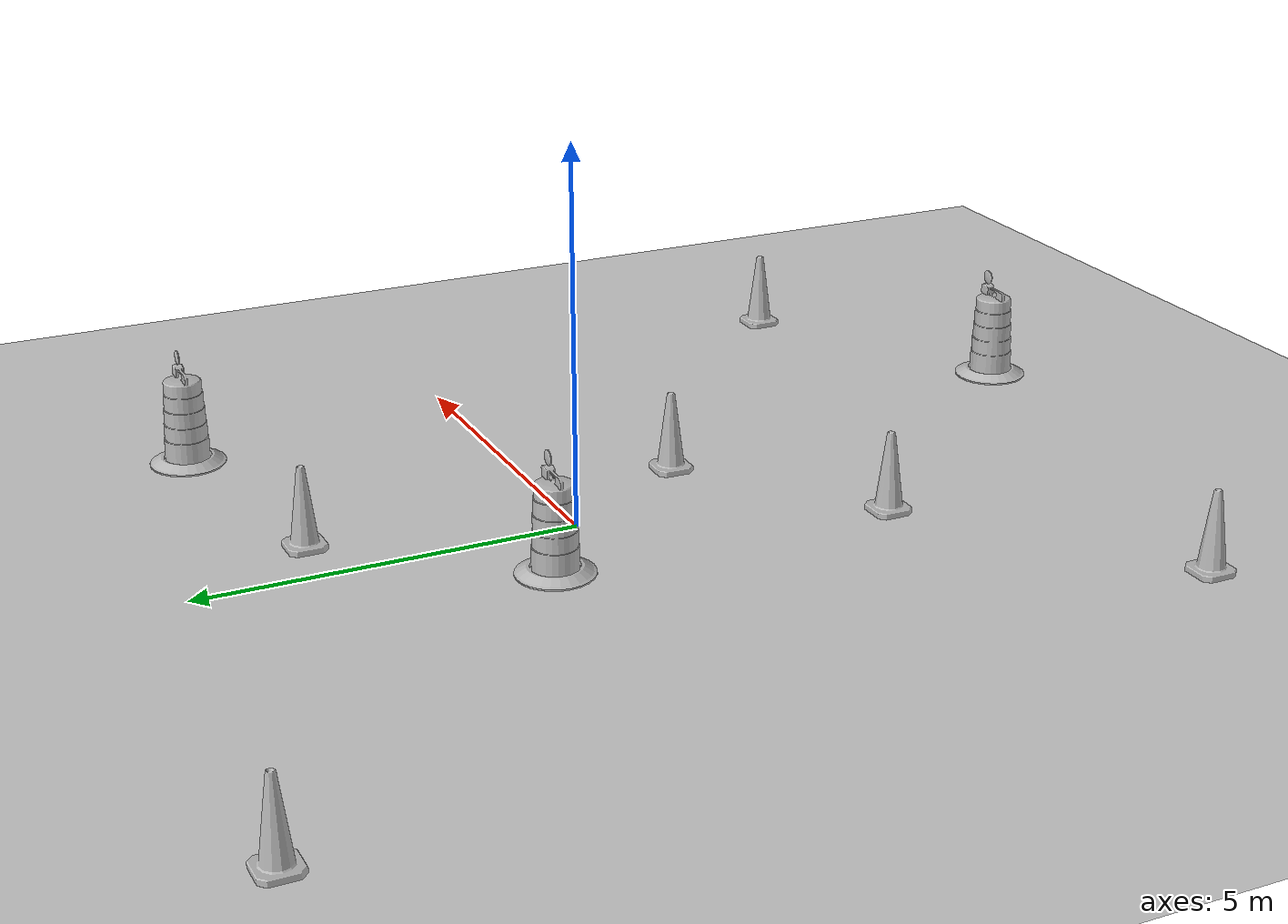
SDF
<sdf version="1.7">
 <world name="default">
  <light name="sun" type="directional">
   <pose>0 0 10 0 -0 0</pose>
   <diffuse>0.8 0.8 0.8 1</diffuse>
   <specular>0.2 0.2 0.2 1</specular>
   <attenuation>
    <range>1000</range>
    <constant>0.9</constant>
    <linear>0.01</linear>
    <quadratic>0.001</quadratic>
   </attenuation>
   <direction>-0.5 0.1 -0.9</direction>
   <spot><inner_angle>0</inner_angle><outer_angle>0</outer_angle><falloff>0</falloff></spot>
  </light>
  <model name="ground_plane">
   <static>1</static>
   <link name="link">
    <collision name="collision">
     <geometry><plane><normal>0 0 1</normal><size>100 100</size></plane></geometry>
     <surface>
      <contact><collide_bitmask>65535</collide_bitmask></contact>
      <friction><ode><mu>100</mu><mu2>50</mu2></ode></friction>
     </surface>
    </collision>
    <visual name="visual">
     <cast_shadows>0</cast_shadows>
     <geometry><plane><normal>0 0 1</normal><size>100 100</size></plane></geometry>
     <material>
      <script><uri>file://media/materials/scripts/gazebo.material</uri><name>Gazebo/Grey</name></script>
     </material>
    </visual>
   </link>
  </model>
  <gravity>0 0 -9.8</gravity>
  <magnetic_field>6e-06 2.3e-05 -4.2e-05</magnetic_field>
  <atmosphere type="adiabatic"/>
  <physics type="ode">
   <max_step_size>0.001</max_step_size>
   <real_time_factor>1</real_time_factor>
   <real_time_update_rate>1000</real_time_update_rate>
  </physics>
  <scene><ambient>0.4 0.4 0.4 1</ambient><background>0.7 0.7 0.7 1</background><shadows>1</shadows></scene>
  <audio><device>default</device></audio>
  <spherical_coordinates>
   <surface_model>EARTH_WGS84</surface_model>
   <latitude_deg>0</latitude_deg>
   <longitude_deg>0</longitude_deg>
   <elevation>0</elevation>
   <heading_deg>0</heading_deg>
  </spherical_coordinates>
  <model name="Construction Barrel">
   <link name="link">
    <inertial>
     <pose>0 0 0.4 0 -0 0</pose>
     <mass>500</mass>
     <inertia><ixx>51.2096</ixx><iyy>51.2096</iyy><izz>25</izz><ixy>0</ixy><ixz>0</ixz><iyz>0</iyz></inertia>
    </inertial>
    <collision name="collision">
     <geometry><mesh><uri>model://construction_barrel/meshes/construction_barrel.dae</uri></mesh></geometry>
    </collision>
    <visual name="visual">
     <geometry><mesh><uri>model://construction_barrel/meshes/construction_barrel.dae</uri></mesh></geometry>
    </visual>
   </link>
   <pose>-1.15241 0.780892 -1e-06 3e-06 -2e-06 -1.8e-05</pose>
  </model>
  <model name="Construction Cone">
   <link name="link">
    <collision name="collision">
     <geometry>
      <mesh><scale>10 10 10</scale><uri>model://construction_cone/meshes/construction_cone.dae</uri></mesh>
     </geometry>
    </collision>
    <visual name="visual">
     <geometry>
      <mesh><scale>10 10 10</scale><uri>model://construction_cone/meshes/construction_cone.dae</uri></mesh>
     </geometry>
    </visual>
    <inertial>
     <inertia><ixx>1</ixx><ixy>0</ixy><ixz>0</ixz><iyy>1</iyy><iyz>0</iyz><izz>1</izz></inertia>
     <mass>1</mass>
    </inertial>
   </link>
   <pose>1.1638 -1.89167 -0 0 -1e-06 -0.020676</pose>
  </model>
  <model name="Construction Barrel_0">
   <link name="link">
    <inertial>
     <pose>0 0 0.4 0 -0 0</pose>
     <mass>500</mass>
     <inertia><ixx>51.2096</ixx><iyy>51.2096</iyy><izz>25</izz><ixy>0</ixy><ixz>0</ixz><iyz>0</iyz></inertia>
    </inertial>
    <collision name="collision">
     <geometry><mesh><uri>model://construction_barrel/meshes/construction_barrel.dae</uri></mesh></geometry>
    </collision>
    <visual name="visual">
     <geometry><mesh><uri>model://construction_barrel/meshes/construction_barrel.dae</uri></mesh></geometry>
    </visual>
   </link>
   <pose>4.18622 3.88918 -1e-06 2e-06 -1e-06 -1.6e-05</pose>
  </model>
  <model name="Construction Cone_0">
   <link name="link">
    <collision name="collision">
     <geometry>
      <mesh><scale>10 10 10</scale><uri>model://construction_cone/meshes/construction_cone.dae</uri></mesh>
     </geometry>
    </collision>
    <visual name="visual">
     <geometry>
      <mesh><scale>10 10 10</scale><uri>model://construction_cone/meshes/construction_cone.dae</uri></mesh>
     </geometry>
    </visual>
    <inertial>
     <inertia><ixx>1</ixx><ixy>0</ixy><ixz>0</ixz><iyy>1</iyy><iyz>0</iyz><izz>1</izz></inertia>
     <mass>1</mass>
    </inertial>
   </link>
   <pose>0.8672 3.29356 -0 0 -1e-06 0</pose>
  </model>
  <model name="Construction Cone_1">
   <link name="link">
    <collision name="collision">
     <geometry>
      <mesh><scale>10 10 10</scale><uri>model://construction_cone/meshes/construction_cone.dae</uri></mesh>
     </geometry>
    </collision>
    <visual name="visual">
     <geometry>
      <mesh><scale>10 10 10</scale><uri>model://construction_cone/meshes/construction_cone.dae</uri></mesh>
     </geometry>
    </visual>
    <inertial>
     <inertia><ixx>1</ixx><ixy>0</ixy><ixz>0</ixz><iyy>1</iyy><iyz>0</iyz><izz>1</izz></inertia>
     <mass>1</mass>
    </inertial>
   </link>
   <pose>-1.28242 -3.81636 -8e-06 1e-06 -0 0</pose>
  </model>
  <model name="Construction Cone_2">
   <link name="link">
    <collision name="collision">
     <geometry>
      <mesh><scale>10 10 10</scale><uri>model://construction_cone/meshes/construction_cone.dae</uri></mesh>
     </geometry>
    </collision>
    <visual name="visual">
     <geometry>
      <mesh><scale>10 10 10</scale><uri>model://construction_cone/meshes/construction_cone.dae</uri></mesh>
     </geometry>
    </visual>
    <inertial>
     <inertia><ixx>1</ixx><ixy>0</ixy><ixz>0</ixz><iyy>1</iyy><iyz>0</iyz><izz>1</izz></inertia>
     <mass>1</mass>
    </inertial>
   </link>
   <pose>5.92349 -5.75213 -1e-05 -0 -0 -0</pose>
  </model>
  <model name="Construction Cone_3">
   <link name="link">
    <collision name="collision">
     <geometry>
      <mesh><scale>10 10 10</scale><uri>model://construction_cone/meshes/construction_cone.dae</uri></mesh>
     </geometry>
    </collision>
    <visual name="visual">
     <geometry>
      <mesh><scale>10 10 10</scale><uri>model://construction_cone/meshes/construction_cone.dae</uri></mesh>
     </geometry>
    </visual>
    <inertial>
     <inertia><ixx>1</ixx><ixy>0</ixy><ixz>0</ixz><iyy>1</iyy><iyz>0</iyz><izz>1</izz></inertia>
     <mass>1</mass>
    </inertial>
   </link>
   <pose>-4.55882 -6.38343 -1e-05 -0 -0 -0</pose>
  </model>
  <model name="Construction Cone_4">
   <link name="link">
    <collision name="collision">
     <geometry>
      <mesh><scale>10 10 10</scale><uri>model://construction_cone/meshes/construction_cone.dae</uri></mesh>
     </geometry>
    </collision>
    <visual name="visual">
     <geometry>
      <mesh><scale>10 10 10</scale><uri>model://construction_cone/meshes/construction_cone.dae</uri></mesh>
     </geometry>
    </visual>
    <inertial>
     <inertia><ixx>1</ixx><ixy>0</ixy><ixz>0</ixz><iyy>1</iyy><iyz>0</iyz><izz>1</izz></inertia>
     <mass>1</mass>
    </inertial>
   </link>
   <pose>-6.015 5.72422 -0 0 -0 0</pose>
  </model>
  <model name="Construction Barrel_1">
   <link name="link">
    <inertial>
     <pose>0 0 0.4 0 -0 0</pose>
     <mass>500</mass>
     <inertia><ixx>51.2096</ixx><iyy>51.2096</iyy><izz>25</izz><ixy>0</ixy><ixz>0</ixz><iyz>0</iyz></inertia>
    </inertial>
    <collision name="collision">
     <geometry><mesh><uri>model://construction_barrel/meshes/construction_barrel.dae</uri></mesh></geometry>
    </collision>
    <visual name="visual">
     <geometry><mesh><uri>model://construction_barrel/meshes/construction_barrel.dae</uri></mesh></geometry>
    </visual>
   </link>
   <pose>2.42356 -7.78733 -0 0 0 -4e-06</pose>
  </model>
 </world>
</sdf>
